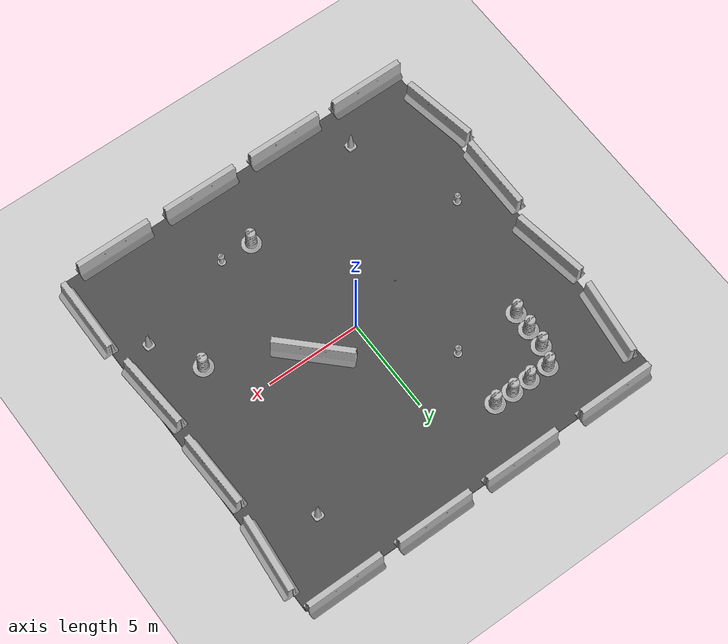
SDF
<sdf version="1.7">
 <world name="default">
  <light name="sun" type="directional">
   <pose>0 0 10 0 -0 0</pose>
   <diffuse>0.8 0.8 0.8 1</diffuse>
   <specular>0.2 0.2 0.2 1</specular>
   <attenuation>
    <range>1000</range>
    <constant>0.9</constant>
    <linear>0.01</linear>
    <quadratic>0.001</quadratic>
   </attenuation>
   <direction>-0.5 0.1 -0.9</direction>
   <spot><inner_angle>0</inner_angle><outer_angle>0</outer_angle><falloff>0</falloff></spot>
  </light>
  <model name="ground_plane">
   <static>1</static>
   <link name="link">
    <collision name="collision">
     <geometry><plane><normal>0 0 1</normal><size>100 100</size></plane></geometry>
     <surface><friction><ode><mu>100</mu><mu2>50</mu2></ode></friction></surface>
    </collision>
    <visual name="visual">
     <cast_shadows>0</cast_shadows>
     <geometry><plane><normal>0 0 1</normal><size>100 100</size></plane></geometry>
     <material>
      <script><uri>file://media/materials/scripts/gazebo.material</uri><name>Gazebo/Grey</name></script>
     </material>
    </visual>
    <velocity_decay><linear>0</linear><angular>0</angular></velocity_decay>
   </link>
  </model>
  <physics type="ode">
   <max_step_size>0.01</max_step_size>
   <real_time_factor>1</real_time_factor>
   <real_time_update_rate>100</real_time_update_rate>
  </physics>
  <scene><ambient>0.4 0.4 0.4 1</ambient><background>0.7 0.7 0.7 1</background><shadows>1</shadows></scene>
  <model name="jersey_barrier">
   <static>1</static>
   <link name="link">
    <visual name="visual">
     <geometry><mesh><uri>model://jersey_barrier/meshes/jersey_barrier.dae</uri></mesh></geometry>
    </visual>
    <collision name="upright">
     <pose>0 0 0.5715 0 -0 0</pose>
     <geometry><box><size>4.06542 0.3063 1.143</size></box></geometry>
    </collision>
    <collision name="base">
     <pose>0 0 0.032258 0 -0 0</pose>
     <geometry><box><size>4.06542 0.8107 0.064516</size></box></geometry>
    </collision>
    <collision name="base2">
     <pose>0 0 0.1 0 -0 0</pose>
     <geometry><box><size>4.06542 0.65 0.1</size></box></geometry>
    </collision>
    <collision name="base3">
     <pose>0 0 0.2 0 -0 0</pose>
     <geometry><box><size>4.06542 0.5 0.1</size></box></geometry>
    </collision>
    <collision name="left-angle">
     <pose>0 -0.224 0.2401 0.9 -0 0</pose>
     <geometry><box><size>4.06542 0.5 0.064516</size></box></geometry>
    </collision>
    <collision name="right-angle">
     <pose>0 0.224 0.2401 -0.9 0 0</pose>
     <geometry><box><size>4.06542 0.5 0.064516</size></box></geometry>
    </collision>
    <velocity_decay><linear>0</linear><angular>0</angular></velocity_decay>
   </link>
   <pose>-8 -10 0 0 -0 0</pose>
  </model>
  <model name="jersey_barrier_0">
   <static>1</static>
   <link name="link">
    <visual name="visual">
     <geometry><mesh><uri>model://jersey_barrier/meshes/jersey_barrier.dae</uri></mesh></geometry>
    </visual>
    <collision name="upright">
     <pose>0 0 0.5715 0 -0 0</pose>
     <geometry><box><size>4.06542 0.3063 1.143</size></box></geometry>
    </collision>
    <collision name="base">
     <pose>0 0 0.032258 0 -0 0</pose>
     <geometry><box><size>4.06542 0.8107 0.064516</size></box></geometry>
    </collision>
    <collision name="base2">
     <pose>0 0 0.1 0 -0 0</pose>
     <geometry><box><size>4.06542 0.65 0.1</size></box></geometry>
    </collision>
    <collision name="base3">
     <pose>0 0 0.2 0 -0 0</pose>
     <geometry><box><size>4.06542 0.5 0.1</size></box></geometry>
    </collision>
    <collision name="left-angle">
     <pose>0 -0.224 0.2401 0.9 -0 0</pose>
     <geometry><box><size>4.06542 0.5 0.064516</size></box></geometry>
    </collision>
    <collision name="right-angle">
     <pose>0 0.224 0.2401 -0.9 0 0</pose>
     <geometry><box><size>4.06542 0.5 0.064516</size></box></geometry>
    </collision>
    <velocity_decay><linear>0</linear><angular>0</angular></velocity_decay>
   </link>
   <pose>-3 -10 0 0 -0 0</pose>
  </model>
  <model name="jersey_barrier_1">
   <static>1</static>
   <link name="link">
    <visual name="visual">
     <geometry><mesh><uri>model://jersey_barrier/meshes/jersey_barrier.dae</uri></mesh></geometry>
    </visual>
    <collision name="upright">
     <pose>0 0 0.5715 0 -0 0</pose>
     <geometry><box><size>4.06542 0.3063 1.143</size></box></geometry>
    </collision>
    <collision name="base">
     <pose>0 0 0.032258 0 -0 0</pose>
     <geometry><box><size>4.06542 0.8107 0.064516</size></box></geometry>
    </collision>
    <collision name="base2">
     <pose>0 0 0.1 0 -0 0</pose>
     <geometry><box><size>4.06542 0.65 0.1</size></box></geometry>
    </collision>
    <collision name="base3">
     <pose>0 0 0.2 0 -0 0</pose>
     <geometry><box><size>4.06542 0.5 0.1</size></box></geometry>
    </collision>
    <collision name="left-angle">
     <pose>0 -0.224 0.2401 0.9 -0 0</pose>
     <geometry><box><size>4.06542 0.5 0.064516</size></box></geometry>
    </collision>
    <collision name="right-angle">
     <pose>0 0.224 0.2401 -0.9 0 0</pose>
     <geometry><box><size>4.06542 0.5 0.064516</size></box></geometry>
    </collision>
    <velocity_decay><linear>0</linear><angular>0</angular></velocity_decay>
   </link>
   <pose>2 -10 0 0 -0 0</pose>
  </model>
  <model name="jersey_barrier_2">
   <static>1</static>
   <link name="link">
    <visual name="visual">
     <geometry><mesh><uri>model://jersey_barrier/meshes/jersey_barrier.dae</uri></mesh></geometry>
    </visual>
    <collision name="upright">
     <pose>0 0 0.5715 0 -0 0</pose>
     <geometry><box><size>4.06542 0.3063 1.143</size></box></geometry>
    </collision>
    <collision name="base">
     <pose>0 0 0.032258 0 -0 0</pose>
     <geometry><box><size>4.06542 0.8107 0.064516</size></box></geometry>
    </collision>
    <collision name="base2">
     <pose>0 0 0.1 0 -0 0</pose>
     <geometry><box><size>4.06542 0.65 0.1</size></box></geometry>
    </collision>
    <collision name="base3">
     <pose>0 0 0.2 0 -0 0</pose>
     <geometry><box><size>4.06542 0.5 0.1</size></box></geometry>
    </collision>
    <collision name="left-angle">
     <pose>0 -0.224 0.2401 0.9 -0 0</pose>
     <geometry><box><size>4.06542 0.5 0.064516</size></box></geometry>
    </collision>
    <collision name="right-angle">
     <pose>0 0.224 0.2401 -0.9 0 0</pose>
     <geometry><box><size>4.06542 0.5 0.064516</size></box></geometry>
    </collision>
    <velocity_decay><linear>0</linear><angular>0</angular></velocity_decay>
   </link>
   <pose>7 -10 0 0 -0 0</pose>
  </model>
  <model name="jersey_barrier_3">
   <static>1</static>
   <link name="link">
    <visual name="visual">
     <geometry><mesh><uri>model://jersey_barrier/meshes/jersey_barrier.dae</uri></mesh></geometry>
    </visual>
    <collision name="upright">
     <pose>0 0 0.5715 0 -0 0</pose>
     <geometry><box><size>4.06542 0.3063 1.143</size></box></geometry>
    </collision>
    <collision name="base">
     <pose>0 0 0.032258 0 -0 0</pose>
     <geometry><box><size>4.06542 0.8107 0.064516</size></box></geometry>
    </collision>
    <collision name="base2">
     <pose>0 0 0.1 0 -0 0</pose>
     <geometry><box><size>4.06542 0.65 0.1</size></box></geometry>
    </collision>
    <collision name="base3">
     <pose>0 0 0.2 0 -0 0</pose>
     <geometry><box><size>4.06542 0.5 0.1</size></box></geometry>
    </collision>
    <collision name="left-angle">
     <pose>0 -0.224 0.2401 0.9 -0 0</pose>
     <geometry><box><size>4.06542 0.5 0.064516</size></box></geometry>
    </collision>
    <collision name="right-angle">
     <pose>0 0.224 0.2401 -0.9 0 0</pose>
     <geometry><box><size>4.06542 0.5 0.064516</size></box></geometry>
    </collision>
    <velocity_decay><linear>0</linear><angular>0</angular></velocity_decay>
   </link>
   <pose>-7.50675 10 0 0 -0 0</pose>
  </model>
  <model name="jersey_barrier_4">
   <static>1</static>
   <link name="link">
    <visual name="visual">
     <geometry><mesh><uri>model://jersey_barrier/meshes/jersey_barrier.dae</uri></mesh></geometry>
    </visual>
    <collision name="upright">
     <pose>0 0 0.5715 0 -0 0</pose>
     <geometry><box><size>4.06542 0.3063 1.143</size></box></geometry>
    </collision>
    <collision name="base">
     <pose>0 0 0.032258 0 -0 0</pose>
     <geometry><box><size>4.06542 0.8107 0.064516</size></box></geometry>
    </collision>
    <collision name="base2">
     <pose>0 0 0.1 0 -0 0</pose>
     <geometry><box><size>4.06542 0.65 0.1</size></box></geometry>
    </collision>
    <collision name="base3">
     <pose>0 0 0.2 0 -0 0</pose>
     <geometry><box><size>4.06542 0.5 0.1</size></box></geometry>
    </collision>
    <collision name="left-angle">
     <pose>0 -0.224 0.2401 0.9 -0 0</pose>
     <geometry><box><size>4.06542 0.5 0.064516</size></box></geometry>
    </collision>
    <collision name="right-angle">
     <pose>0 0.224 0.2401 -0.9 0 0</pose>
     <geometry><box><size>4.06542 0.5 0.064516</size></box></geometry>
    </collision>
    <velocity_decay><linear>0</linear><angular>0</angular></velocity_decay>
   </link>
   <pose>-2 10 0 0 -0 0</pose>
  </model>
  <model name="jersey_barrier_5">
   <static>1</static>
   <link name="link">
    <visual name="visual">
     <geometry><mesh><uri>model://jersey_barrier/meshes/jersey_barrier.dae</uri></mesh></geometry>
    </visual>
    <collision name="upright">
     <pose>0 0 0.5715 0 -0 0</pose>
     <geometry><box><size>4.06542 0.3063 1.143</size></box></geometry>
    </collision>
    <collision name="base">
     <pose>0 0 0.032258 0 -0 0</pose>
     <geometry><box><size>4.06542 0.8107 0.064516</size></box></geometry>
    </collision>
    <collision name="base2">
     <pose>0 0 0.1 0 -0 0</pose>
     <geometry><box><size>4.06542 0.65 0.1</size></box></geometry>
    </collision>
    <collision name="base3">
     <pose>0 0 0.2 0 -0 0</pose>
     <geometry><box><size>4.06542 0.5 0.1</size></box></geometry>
    </collision>
    <collision name="left-angle">
     <pose>0 -0.224 0.2401 0.9 -0 0</pose>
     <geometry><box><size>4.06542 0.5 0.064516</size></box></geometry>
    </collision>
    <collision name="right-angle">
     <pose>0 0.224 0.2401 -0.9 0 0</pose>
     <geometry><box><size>4.06542 0.5 0.064516</size></box></geometry>
    </collision>
    <velocity_decay><linear>0</linear><angular>0</angular></velocity_decay>
   </link>
   <pose>3 10 0 0 -0 0</pose>
  </model>
  <model name="jersey_barrier_6">
   <static>1</static>
   <link name="link">
    <visual name="visual">
     <geometry><mesh><uri>model://jersey_barrier/meshes/jersey_barrier.dae</uri></mesh></geometry>
    </visual>
    <collision name="upright">
     <pose>0 0 0.5715 0 -0 0</pose>
     <geometry><box><size>4.06542 0.3063 1.143</size></box></geometry>
    </collision>
    <collision name="base">
     <pose>0 0 0.032258 0 -0 0</pose>
     <geometry><box><size>4.06542 0.8107 0.064516</size></box></geometry>
    </collision>
    <collision name="base2">
     <pose>0 0 0.1 0 -0 0</pose>
     <geometry><box><size>4.06542 0.65 0.1</size></box></geometry>
    </collision>
    <collision name="base3">
     <pose>0 0 0.2 0 -0 0</pose>
     <geometry><box><size>4.06542 0.5 0.1</size></box></geometry>
    </collision>
    <collision name="left-angle">
     <pose>0 -0.224 0.2401 0.9 -0 0</pose>
     <geometry><box><size>4.06542 0.5 0.064516</size></box></geometry>
    </collision>
    <collision name="right-angle">
     <pose>0 0.224 0.2401 -0.9 0 0</pose>
     <geometry><box><size>4.06542 0.5 0.064516</size></box></geometry>
    </collision>
    <velocity_decay><linear>0</linear><angular>0</angular></velocity_decay>
   </link>
   <pose>8 10 0 0 -0 0</pose>
  </model>
  <model name="jersey_barrier_7">
   <static>1</static>
   <link name="link">
    <visual name="visual">
     <geometry><mesh><uri>model://jersey_barrier/meshes/jersey_barrier.dae</uri></mesh></geometry>
    </visual>
    <collision name="upright">
     <pose>0 0 0.5715 0 -0 0</pose>
     <geometry><box><size>4.06542 0.3063 1.143</size></box></geometry>
    </collision>
    <collision name="base">
     <pose>0 0 0.032258 0 -0 0</pose>
     <geometry><box><size>4.06542 0.8107 0.064516</size></box></geometry>
    </collision>
    <collision name="base2">
     <pose>0 0 0.1 0 -0 0</pose>
     <geometry><box><size>4.06542 0.65 0.1</size></box></geometry>
    </collision>
    <collision name="base3">
     <pose>0 0 0.2 0 -0 0</pose>
     <geometry><box><size>4.06542 0.5 0.1</size></box></geometry>
    </collision>
    <collision name="left-angle">
     <pose>0 -0.224 0.2401 0.9 -0 0</pose>
     <geometry><box><size>4.06542 0.5 0.064516</size></box></geometry>
    </collision>
    <collision name="right-angle">
     <pose>0 0.224 0.2401 -0.9 0 0</pose>
     <geometry><box><size>4.06542 0.5 0.064516</size></box></geometry>
    </collision>
    <velocity_decay><linear>0</linear><angular>0</angular></velocity_decay>
   </link>
   <pose>9.74902 -2.57759 0 0 -0 1.64</pose>
  </model>
  <model name="jersey_barrier_8">
   <static>1</static>
   <link name="link">
    <visual name="visual">
     <geometry><mesh><uri>model://jersey_barrier/meshes/jersey_barrier.dae</uri></mesh></geometry>
    </visual>
    <collision name="upright">
     <pose>0 0 0.5715 0 -0 0</pose>
     <geometry><box><size>4.06542 0.3063 1.143</size></box></geometry>
    </collision>
    <collision name="base">
     <pose>0 0 0.032258 0 -0 0</pose>
     <geometry><box><size>4.06542 0.8107 0.064516</size></box></geometry>
    </collision>
    <collision name="base2">
     <pose>0 0 0.1 0 -0 0</pose>
     <geometry><box><size>4.06542 0.65 0.1</size></box></geometry>
    </collision>
    <collision name="base3">
     <pose>0 0 0.2 0 -0 0</pose>
     <geometry><box><size>4.06542 0.5 0.1</size></box></geometry>
    </collision>
    <collision name="left-angle">
     <pose>0 -0.224 0.2401 0.9 -0 0</pose>
     <geometry><box><size>4.06542 0.5 0.064516</size></box></geometry>
    </collision>
    <collision name="right-angle">
     <pose>0 0.224 0.2401 -0.9 0 0</pose>
     <geometry><box><size>4.06542 0.5 0.064516</size></box></geometry>
    </collision>
    <velocity_decay><linear>0</linear><angular>0</angular></velocity_decay>
   </link>
   <pose>9.70141 2.24369 0 0 -0 1.6</pose>
  </model>
  <model name="jersey_barrier_9">
   <static>1</static>
   <link name="link">
    <visual name="visual">
     <geometry><mesh><uri>model://jersey_barrier/meshes/jersey_barrier.dae</uri></mesh></geometry>
    </visual>
    <collision name="upright">
     <pose>0 0 0.5715 0 -0 0</pose>
     <geometry><box><size>4.06542 0.3063 1.143</size></box></geometry>
    </collision>
    <collision name="base">
     <pose>0 0 0.032258 0 -0 0</pose>
     <geometry><box><size>4.06542 0.8107 0.064516</size></box></geometry>
    </collision>
    <collision name="base2">
     <pose>0 0 0.1 0 -0 0</pose>
     <geometry><box><size>4.06542 0.65 0.1</size></box></geometry>
    </collision>
    <collision name="base3">
     <pose>0 0 0.2 0 -0 0</pose>
     <geometry><box><size>4.06542 0.5 0.1</size></box></geometry>
    </collision>
    <collision name="left-angle">
     <pose>0 -0.224 0.2401 0.9 -0 0</pose>
     <geometry><box><size>4.06542 0.5 0.064516</size></box></geometry>
    </collision>
    <collision name="right-angle">
     <pose>0 0.224 0.2401 -0.9 0 0</pose>
     <geometry><box><size>4.06542 0.5 0.064516</size></box></geometry>
    </collision>
    <velocity_decay><linear>0</linear><angular>0</angular></velocity_decay>
   </link>
   <pose>-10.0607 -6.69856 0 0 0 -1.4</pose>
  </model>
  <model name="jersey_barrier_10">
   <static>1</static>
   <link name="link">
    <visual name="visual">
     <geometry><mesh><uri>model://jersey_barrier/meshes/jersey_barrier.dae</uri></mesh></geometry>
    </visual>
    <collision name="upright">
     <pose>0 0 0.5715 0 -0 0</pose>
     <geometry><box><size>4.06542 0.3063 1.143</size></box></geometry>
    </collision>
    <collision name="base">
     <pose>0 0 0.032258 0 -0 0</pose>
     <geometry><box><size>4.06542 0.8107 0.064516</size></box></geometry>
    </collision>
    <collision name="base2">
     <pose>0 0 0.1 0 -0 0</pose>
     <geometry><box><size>4.06542 0.65 0.1</size></box></geometry>
    </collision>
    <collision name="base3">
     <pose>0 0 0.2 0 -0 0</pose>
     <geometry><box><size>4.06542 0.5 0.1</size></box></geometry>
    </collision>
    <collision name="left-angle">
     <pose>0 -0.224 0.2401 0.9 -0 0</pose>
     <geometry><box><size>4.06542 0.5 0.064516</size></box></geometry>
    </collision>
    <collision name="right-angle">
     <pose>0 0.224 0.2401 -0.9 0 0</pose>
     <geometry><box><size>4.06542 0.5 0.064516</size></box></geometry>
    </collision>
    <velocity_decay><linear>0</linear><angular>0</angular></velocity_decay>
   </link>
   <pose>-10.0774 -2.27159 0 0 -0 1.56</pose>
  </model>
  <model name="jersey_barrier_11">
   <static>1</static>
   <link name="link">
    <visual name="visual">
     <geometry><mesh><uri>model://jersey_barrier/meshes/jersey_barrier.dae</uri></mesh></geometry>
    </visual>
    <collision name="upright">
     <pose>0 0 0.5715 0 -0 0</pose>
     <geometry><box><size>4.06542 0.3063 1.143</size></box></geometry>
    </collision>
    <collision name="base">
     <pose>0 0 0.032258 0 -0 0</pose>
     <geometry><box><size>4.06542 0.8107 0.064516</size></box></geometry>
    </collision>
    <collision name="base2">
     <pose>0 0 0.1 0 -0 0</pose>
     <geometry><box><size>4.06542 0.65 0.1</size></box></geometry>
    </collision>
    <collision name="base3">
     <pose>0 0 0.2 0 -0 0</pose>
     <geometry><box><size>4.06542 0.5 0.1</size></box></geometry>
    </collision>
    <collision name="left-angle">
     <pose>0 -0.224 0.2401 0.9 -0 0</pose>
     <geometry><box><size>4.06542 0.5 0.064516</size></box></geometry>
    </collision>
    <collision name="right-angle">
     <pose>0 0.224 0.2401 -0.9 0 0</pose>
     <geometry><box><size>4.06542 0.5 0.064516</size></box></geometry>
    </collision>
    <velocity_decay><linear>0</linear><angular>0</angular></velocity_decay>
   </link>
   <pose>-9.77013 2.34791 0 0 -0 1.72</pose>
  </model>
  <model name="jersey_barrier_12">
   <static>1</static>
   <link name="link">
    <visual name="visual">
     <geometry><mesh><uri>model://jersey_barrier/meshes/jersey_barrier.dae</uri></mesh></geometry>
    </visual>
    <collision name="upright">
     <pose>0 0 0.5715 0 -0 0</pose>
     <geometry><box><size>4.06542 0.3063 1.143</size></box></geometry>
    </collision>
    <collision name="base">
     <pose>0 0 0.032258 0 -0 0</pose>
     <geometry><box><size>4.06542 0.8107 0.064516</size></box></geometry>
    </collision>
    <collision name="base2">
     <pose>0 0 0.1 0 -0 0</pose>
     <geometry><box><size>4.06542 0.65 0.1</size></box></geometry>
    </collision>
    <collision name="base3">
     <pose>0 0 0.2 0 -0 0</pose>
     <geometry><box><size>4.06542 0.5 0.1</size></box></geometry>
    </collision>
    <collision name="left-angle">
     <pose>0 -0.224 0.2401 0.9 -0 0</pose>
     <geometry><box><size>4.06542 0.5 0.064516</size></box></geometry>
    </collision>
    <collision name="right-angle">
     <pose>0 0.224 0.2401 -0.9 0 0</pose>
     <geometry><box><size>4.06542 0.5 0.064516</size></box></geometry>
    </collision>
    <velocity_decay><linear>0</linear><angular>0</angular></velocity_decay>
   </link>
   <pose>10.0879 -7.62159 0 0 -0 1.56</pose>
  </model>
  <model name="jersey_barrier_13">
   <static>1</static>
   <link name="link">
    <visual name="visual">
     <geometry><mesh><uri>model://jersey_barrier/meshes/jersey_barrier.dae</uri></mesh></geometry>
    </visual>
    <collision name="upright">
     <pose>0 0 0.5715 0 -0 0</pose>
     <geometry><box><size>4.06542 0.3063 1.143</size></box></geometry>
    </collision>
    <collision name="base">
     <pose>0 0 0.032258 0 -0 0</pose>
     <geometry><box><size>4.06542 0.8107 0.064516</size></box></geometry>
    </collision>
    <collision name="base2">
     <pose>0 0 0.1 0 -0 0</pose>
     <geometry><box><size>4.06542 0.65 0.1</size></box></geometry>
    </collision>
    <collision name="base3">
     <pose>0 0 0.2 0 -0 0</pose>
     <geometry><box><size>4.06542 0.5 0.1</size></box></geometry>
    </collision>
    <collision name="left-angle">
     <pose>0 -0.224 0.2401 0.9 -0 0</pose>
     <geometry><box><size>4.06542 0.5 0.064516</size></box></geometry>
    </collision>
    <collision name="right-angle">
     <pose>0 0.224 0.2401 -0.9 0 0</pose>
     <geometry><box><size>4.06542 0.5 0.064516</size></box></geometry>
    </collision>
    <velocity_decay><linear>0</linear><angular>0</angular></velocity_decay>
   </link>
   <pose>10 7 0 0 -0 1.48</pose>
  </model>
  <model name="jersey_barrier_14">
   <static>1</static>
   <link name="link">
    <visual name="visual">
     <geometry><mesh><uri>model://jersey_barrier/meshes/jersey_barrier.dae</uri></mesh></geometry>
    </visual>
    <collision name="upright">
     <pose>0 0 0.5715 0 -0 0</pose>
     <geometry><box><size>4.06542 0.3063 1.143</size></box></geometry>
    </collision>
    <collision name="base">
     <pose>0 0 0.032258 0 -0 0</pose>
     <geometry><box><size>4.06542 0.8107 0.064516</size></box></geometry>
    </collision>
    <collision name="base2">
     <pose>0 0 0.1 0 -0 0</pose>
     <geometry><box><size>4.06542 0.65 0.1</size></box></geometry>
    </collision>
    <collision name="base3">
     <pose>0 0 0.2 0 -0 0</pose>
     <geometry><box><size>4.06542 0.5 0.1</size></box></geometry>
    </collision>
    <collision name="left-angle">
     <pose>0 -0.224 0.2401 0.9 -0 0</pose>
     <geometry><box><size>4.06542 0.5 0.064516</size></box></geometry>
    </collision>
    <collision name="right-angle">
     <pose>0 0.224 0.2401 -0.9 0 0</pose>
     <geometry><box><size>4.06542 0.5 0.064516</size></box></geometry>
    </collision>
    <velocity_decay><linear>0</linear><angular>0</angular></velocity_decay>
   </link>
   <pose>-9.64482 7.05946 0 0 -0 1.44</pose>
  </model>
  <model name="fire_hydrant">
   <static>1</static>
   <link name="link">
    <collision name="collision">
     <geometry><mesh><uri>model://fire_hydrant/meshes/fire_hydrant.dae</uri></mesh></geometry>
    </collision>
    <visual name="visual">
     <geometry><mesh><uri>model://fire_hydrant/meshes/fire_hydrant.dae</uri></mesh></geometry>
    </visual>
    <velocity_decay><linear>0</linear><angular>0</angular></velocity_decay>
   </link>
   <pose>3.18024 -6.51118 0 0 -0 0</pose>
  </model>
  <model name="fire_hydrant_0">
   <static>1</static>
   <link name="link">
    <collision name="collision">
     <geometry><mesh><uri>model://fire_hydrant/meshes/fire_hydrant.dae</uri></mesh></geometry>
    </collision>
    <visual name="visual">
     <geometry><mesh><uri>model://fire_hydrant/meshes/fire_hydrant.dae</uri></mesh></geometry>
    </visual>
    <velocity_decay><linear>0</linear><angular>0</angular></velocity_decay>
   </link>
   <pose>-3 4 0 0 -0 0</pose>
  </model>
  <model name="fire_hydrant_1">
   <static>1</static>
   <link name="link">
    <collision name="collision">
     <geometry><mesh><uri>model://fire_hydrant/meshes/fire_hydrant.dae</uri></mesh></geometry>
    </collision>
    <visual name="visual">
     <geometry><mesh><uri>model://fire_hydrant/meshes/fire_hydrant.dae</uri></mesh></geometry>
    </visual>
    <velocity_decay><linear>0</linear><angular>0</angular></velocity_decay>
   </link>
   <pose>-7.90686 -2.41363 0 0 -0 0</pose>
  </model>
  <model name="jersey_barrier_15">
   <static>1</static>
   <link name="link">
    <visual name="visual">
     <geometry><mesh><uri>model://jersey_barrier/meshes/jersey_barrier.dae</uri></mesh></geometry>
    </visual>
    <collision name="upright">
     <pose>0 0 0.5715 0 -0 0</pose>
     <geometry><box><size>4.06542 0.3063 1.143</size></box></geometry>
    </collision>
    <collision name="base">
     <pose>0 0 0.032258 0 -0 0</pose>
     <geometry><box><size>4.06542 0.8107 0.064516</size></box></geometry>
    </collision>
    <collision name="base2">
     <pose>0 0 0.1 0 -0 0</pose>
     <geometry><box><size>4.06542 0.65 0.1</size></box></geometry>
    </collision>
    <collision name="base3">
     <pose>0 0 0.2 0 -0 0</pose>
     <geometry><box><size>4.06542 0.5 0.1</size></box></geometry>
    </collision>
    <collision name="left-angle">
     <pose>0 -0.224 0.2401 0.9 -0 0</pose>
     <geometry><box><size>4.06542 0.5 0.064516</size></box></geometry>
    </collision>
    <collision name="right-angle">
     <pose>0 0.224 0.2401 -0.9 0 0</pose>
     <geometry><box><size>4.06542 0.5 0.064516</size></box></geometry>
    </collision>
    <velocity_decay><linear>0</linear><angular>0</angular></velocity_decay>
   </link>
   <pose>2.45495 0 0 0 -0 2.36</pose>
  </model>
  <model name="Construction Cone">
   <link name="link">
    <collision name="collision">
     <geometry>
      <mesh><scale>10 10 10</scale><uri>model://construction_cone/meshes/construction_cone.dae</uri></mesh>
     </geometry>
    </collision>
    <visual name="visual">
     <geometry>
      <mesh><scale>10 10 10</scale><uri>model://construction_cone/meshes/construction_cone.dae</uri></mesh>
     </geometry>
    </visual>
    <velocity_decay><linear>0</linear><angular>0</angular></velocity_decay>
    <inertial>
     <inertia><ixx>1</ixx><ixy>0</ixy><ixz>0</ixz><iyy>1</iyy><iyz>0</iyz><izz>1</izz></inertia>
     <mass>1</mass>
    </inertial>
   </link>
   <pose>-5.59121 -8 0.049102 3e-06 -1e-05 0</pose>
   <static>0</static>
  </model>
  <model name="Construction Barrel">
   <link name="link">
    <inertial>
     <pose>0 0 0.4 0 -0 0</pose>
     <mass>500</mass>
     <inertia><ixx>51.2096</ixx><iyy>51.2096</iyy><izz>25</izz><ixy>0</ixy><ixz>0</ixz><iyz>0</iyz></inertia>
    </inertial>
    <collision name="collision">
     <geometry><mesh><uri>model://construction_barrel/meshes/construction_barrel.dae</uri></mesh></geometry>
    </collision>
    <visual name="visual">
     <geometry><mesh><uri>model://construction_barrel/meshes/construction_barrel.dae</uri></mesh></geometry>
    </visual>
    <velocity_decay><linear>0</linear><angular>0</angular></velocity_decay>
   </link>
   <pose>7.00006 -2.54634 0.049878 -0.000239 -0.00042 0.000383</pose>
   <static>0</static>
  </model>
  <model name="Construction Cone_0">
   <link name="link">
    <collision name="collision">
     <geometry>
      <mesh><scale>10 10 10</scale><uri>model://construction_cone/meshes/construction_cone.dae</uri></mesh>
     </geometry>
    </collision>
    <visual name="visual">
     <geometry>
      <mesh><scale>10 10 10</scale><uri>model://construction_cone/meshes/construction_cone.dae</uri></mesh>
     </geometry>
    </visual>
    <velocity_decay><linear>0</linear><angular>0</angular></velocity_decay>
    <inertial>
     <inertia><ixx>1</ixx><ixy>0</ixy><ixz>0</ixz><iyy>1</iyy><iyz>0</iyz><izz>1</izz></inertia>
     <mass>1</mass>
    </inertial>
   </link>
   <pose>6.99685 6.55732 0.049102 3e-06 -1e-05 -0.007012</pose>
   <static>0</static>
  </model>
  <model name="Construction Barrel_0">
   <link name="link">
    <inertial>
     <pose>0 0 0.4 0 -0 0</pose>
     <mass>500</mass>
     <inertia><ixx>51.2096</ixx><iyy>51.2096</iyy><izz>25</izz><ixy>0</ixy><ixz>0</ixz><iyz>0</iyz></inertia>
    </inertial>
    <collision name="collision">
     <geometry><mesh><uri>model://construction_barrel/meshes/construction_barrel.dae</uri></mesh></geometry>
    </collision>
    <visual name="visual">
     <geometry><mesh><uri>model://construction_barrel/meshes/construction_barrel.dae</uri></mesh></geometry>
    </visual>
    <velocity_decay><linear>0</linear><angular>0</angular></velocity_decay>
   </link>
   <pose>1.45178 -6.51127 0.0499 0.000427 -2e-05 1.9e-05</pose>
   <static>0</static>
  </model>
  <model name="asphalt_plane">
   <static>1</static>
   <link name="link">
    <collision name="collision"><geometry><box><size>20 20 0.1</size></box></geometry></collision>
    <visual name="visual">
     <cast_shadows>0</cast_shadows>
     <geometry><box><size>20 20 0.1</size></box></geometry>
     <material>
      <script>
       <uri>model://asphalt_plane/materials/scripts</uri>
       <uri>model://asphalt_plane/materials/textures</uri>
       <name>vrc/asphalt</name>
      </script>
     </material>
    </visual>
    <velocity_decay><linear>0</linear><angular>0</angular></velocity_decay>
   </link>
   <pose>0.076733 -0.110379 0 0 -0 0</pose>
  </model>
  <model name="Construction Barrel_1">
   <link name="link">
    <inertial>
     <pose>0 0 0.4 0 -0 0</pose>
     <mass>500</mass>
     <inertia><ixx>51.2096</ixx><iyy>51.2096</iyy><izz>25</izz><ixy>0</ixy><ixz>0</ixz><iyz>0</iyz></inertia>
    </inertial>
    <collision name="collision">
     <geometry><mesh><uri>model://construction_barrel/meshes/construction_barrel.dae</uri></mesh></geometry>
    </collision>
    <visual name="visual">
     <geometry><mesh><uri>model://construction_barrel/meshes/construction_barrel.dae</uri></mesh></geometry>
    </visual>
    <velocity_decay><linear>0</linear><angular>0</angular></velocity_decay>
   </link>
   <pose>-6.50479 3.98263 0.049876 -0.000126 -0.000471 -0.009602</pose>
   <static>0</static>
  </model>
  <model name="Construction Barrel_2">
   <link name="link">
    <inertial>
     <pose>0 0 0.4 0 -0 0</pose>
     <mass>500</mass>
     <inertia><ixx>51.2096</ixx><iyy>51.2096</iyy><izz>25</izz><ixy>0</ixy><ixz>0</ixz><iyz>0</iyz></inertia>
    </inertial>
    <collision name="collision">
     <geometry><mesh><uri>model://construction_barrel/meshes/construction_barrel.dae</uri></mesh></geometry>
    </collision>
    <visual name="visual">
     <geometry><mesh><uri>model://construction_barrel/meshes/construction_barrel.dae</uri></mesh></geometry>
    </visual>
    <velocity_decay><linear>0</linear><angular>0</angular></velocity_decay>
   </link>
   <pose>-6.45064 4.9964 0.049881 0.000476 -6e-06 0.064967</pose>
   <static>0</static>
  </model>
  <model name="Construction Barrel_3">
   <link name="link">
    <inertial>
     <pose>0 0 0.4 0 -0 0</pose>
     <mass>500</mass>
     <inertia><ixx>51.2096</ixx><iyy>51.2096</iyy><izz>25</izz><ixy>0</ixy><ixz>0</ixz><iyz>0</iyz></inertia>
    </inertial>
    <collision name="collision">
     <geometry><mesh><uri>model://construction_barrel/meshes/construction_barrel.dae</uri></mesh></geometry>
    </collision>
    <visual name="visual">
     <geometry><mesh><uri>model://construction_barrel/meshes/construction_barrel.dae</uri></mesh></geometry>
    </visual>
    <velocity_decay><linear>0</linear><angular>0</angular></velocity_decay>
   </link>
   <pose>-6.40172 6.01112 0.049926 0.00034 5.8e-05 -0.120726</pose>
   <static>0</static>
  </model>
  <model name="Construction Barrel_4">
   <link name="link">
    <inertial>
     <pose>0 0 0.4 0 -0 0</pose>
     <mass>500</mass>
     <inertia><ixx>51.2096</ixx><iyy>51.2096</iyy><izz>25</izz><ixy>0</ixy><ixz>0</ixz><iyz>0</iyz></inertia>
    </inertial>
    <collision name="collision">
     <geometry><mesh><uri>model://construction_barrel/meshes/construction_barrel.dae</uri></mesh></geometry>
    </collision>
    <visual name="visual">
     <geometry><mesh><uri>model://construction_barrel/meshes/construction_barrel.dae</uri></mesh></geometry>
    </visual>
    <velocity_decay><linear>0</linear><angular>0</angular></velocity_decay>
   </link>
   <pose>-6.00631 7.00882 0.049897 -9.7e-05 -0.000418 -0.049561</pose>
   <static>0</static>
  </model>
  <model name="Construction Barrel_5">
   <link name="link">
    <inertial>
     <pose>0 0 0.4 0 -0 0</pose>
     <mass>500</mass>
     <inertia><ixx>51.2096</ixx><iyy>51.2096</iyy><izz>25</izz><ixy>0</ixy><ixz>0</ixz><iyz>0</iyz></inertia>
    </inertial>
    <collision name="collision">
     <geometry><mesh><uri>model://construction_barrel/meshes/construction_barrel.dae</uri></mesh></geometry>
    </collision>
    <visual name="visual">
     <geometry><mesh><uri>model://construction_barrel/meshes/construction_barrel.dae</uri></mesh></geometry>
    </visual>
    <velocity_decay><linear>0</linear><angular>0</angular></velocity_decay>
   </link>
   <pose>-4.8757 7.00815 0.049888 -0.00011 -0.000439 0.146142</pose>
   <static>0</static>
  </model>
  <model name="Construction Barrel_6">
   <link name="link">
    <inertial>
     <pose>0 0 0.4 0 -0 0</pose>
     <mass>500</mass>
     <inertia><ixx>51.2096</ixx><iyy>51.2096</iyy><izz>25</izz><ixy>0</ixy><ixz>0</ixz><iyz>0</iyz></inertia>
    </inertial>
    <collision name="collision">
     <geometry><mesh><uri>model://construction_barrel/meshes/construction_barrel.dae</uri></mesh></geometry>
    </collision>
    <visual name="visual">
     <geometry><mesh><uri>model://construction_barrel/meshes/construction_barrel.dae</uri></mesh></geometry>
    </visual>
    <velocity_decay><linear>0</linear><angular>0</angular></velocity_decay>
   </link>
   <pose>-3.86073 7.046 0.049888 0.000459 -1.1e-05 0.034026</pose>
   <static>0</static>
  </model>
  <model name="Construction Barrel_7">
   <link name="link">
    <inertial>
     <pose>0 0 0.4 0 -0 0</pose>
     <mass>500</mass>
     <inertia><ixx>51.2096</ixx><iyy>51.2096</iyy><izz>25</izz><ixy>0</ixy><ixz>0</ixz><iyz>0</iyz></inertia>
    </inertial>
    <collision name="collision">
     <geometry><mesh><uri>model://construction_barrel/meshes/construction_barrel.dae</uri></mesh></geometry>
    </collision>
    <visual name="visual">
     <geometry><mesh><uri>model://construction_barrel/meshes/construction_barrel.dae</uri></mesh></geometry>
    </visual>
    <velocity_decay><linear>0</linear><angular>0</angular></velocity_decay>
   </link>
   <pose>-2.84387 7.03461 0.049876 0.000488 -3e-06 0.003582</pose>
   <static>0</static>
  </model>
  <model name="Construction Cone_1">
   <link name="link">
    <collision name="collision">
     <geometry>
      <mesh><scale>10 10 10</scale><uri>model://construction_cone/meshes/construction_cone.dae</uri></mesh>
     </geometry>
    </collision>
    <visual name="visual">
     <geometry>
      <mesh><scale>10 10 10</scale><uri>model://construction_cone/meshes/construction_cone.dae</uri></mesh>
     </geometry>
    </visual>
    <velocity_decay><linear>0</linear><angular>0</angular></velocity_decay>
    <inertial>
     <inertia><ixx>1</ixx><ixy>0</ixy><ixz>0</ixz><iyy>1</iyy><iyz>0</iyz><izz>1</izz></inertia>
     <mass>1</mass>
    </inertial>
   </link>
   <pose>8.42887 -5 0.049102 3e-06 -1e-05 0</pose>
   <static>0</static>
  </model>
  <gravity>0 0 -9.8</gravity>
  <magnetic_field>6e-06 2.3e-05 -4.2e-05</magnetic_field>
  <atmosphere type="adiabatic"/>
  <spherical_coordinates>
   <surface_model>EARTH_WGS84</surface_model>
   <latitude_deg>0</latitude_deg>
   <longitude_deg>0</longitude_deg>
   <elevation>0</elevation>
   <heading_deg>0</heading_deg>
  </spherical_coordinates>
  <model name="wood_cube_5cm">
   <link name="link">
    <pose>0 0 0.025 0 -0 0</pose>
    <inertial>
     <mass>0.0565</mass>
     <inertia>
      <ixx>2.35417e-05</ixx>
      <ixy>0</ixy>
      <ixz>0</ixz>
      <iyy>2.35417e-05</iyy>
      <iyz>0</iyz>
      <izz>2.35417e-05</izz>
     </inertia>
    </inertial>
    <collision name="collision">
     <geometry><box><size>0.05 0.05 0.05</size></box></geometry>
     <surface>
      <contact>
       <poissons_ratio>0.347</poissons_ratio>
       <elastic_modulus>8.8e+09</elastic_modulus>
       <ode><kp>100000</kp><kd>1</kd><max_vel>1</max_vel><min_depth>0.001</min_depth></ode>
      </contact>
      <friction>
       <torsional>
        <coefficient>1</coefficient>
        <use_patch_radius>0</use_patch_radius>
        <surface_radius>0.05</surface_radius>
       </torsional>
      </friction>
     </surface>
    </collision>
    <visual name="visual">
     <geometry><box><size>0.05 0.05 0.05</size></box></geometry>
     <material>
      <script><uri>file://media/materials/scripts/gazebo.material</uri><name>Gazebo/Wood</name></script>
     </material>
    </visual>
   </link>
   <pose>-2.93512 -0.821855 0.049143 -0.005736 -0.000117 0.000476</pose>
  </model>
  <model name="wood_cube_2_5cm">
   <link name="link">
    <pose>0 0 0.0125 0 -0 0</pose>
    <inertial>
     <mass>0.0073</mass>
     <inertia>
      <ixx>7.60417e-07</ixx>
      <ixy>0</ixy>
      <ixz>0</ixz>
      <iyy>7.60417e-07</iyy>
      <iyz>0</iyz>
      <izz>7.60417e-07</izz>
     </inertia>
    </inertial>
    <collision name="collision">
     <geometry><box><size>0.025 0.025 0.025</size></box></geometry>
     <surface>
      <contact>
       <poissons_ratio>0.347</poissons_ratio>
       <elastic_modulus>8.8e+09</elastic_modulus>
       <ode><kp>100000</kp><kd>100</kd><max_vel>100</max_vel><min_depth>0.001</min_depth></ode>
      </contact>
      <friction>
       <torsional>
        <coefficient>1</coefficient>
        <use_patch_radius>0</use_patch_radius>
        <surface_radius>0.01</surface_radius>
       </torsional>
      </friction>
     </surface>
    </collision>
    <visual name="visual">
     <geometry><box><size>0.025 0.025 0.025</size></box></geometry>
     <material>
      <script><uri>file://media/materials/scripts/gazebo.material</uri><name>Gazebo/Wood</name></script>
     </material>
    </visual>
   </link>
   <pose>1.01891 -0.521762 0.062529 2.12716 -1.52706 0.233844</pose>
  </model>
 </world>
</sdf>
